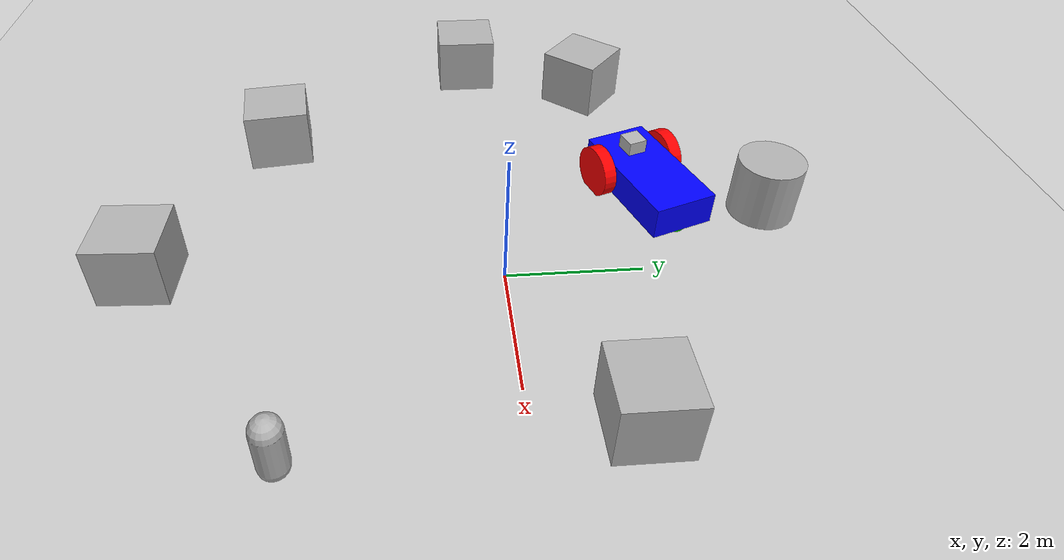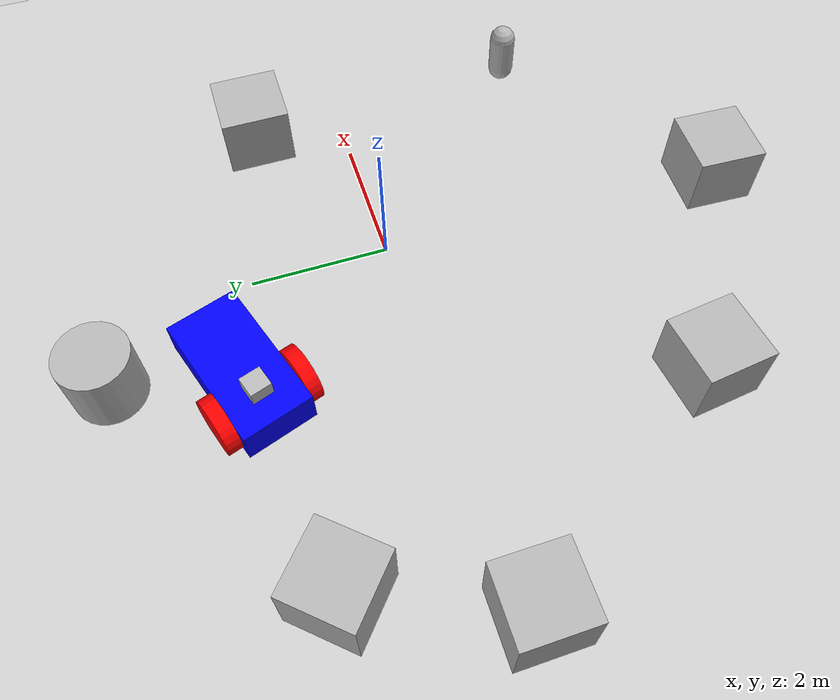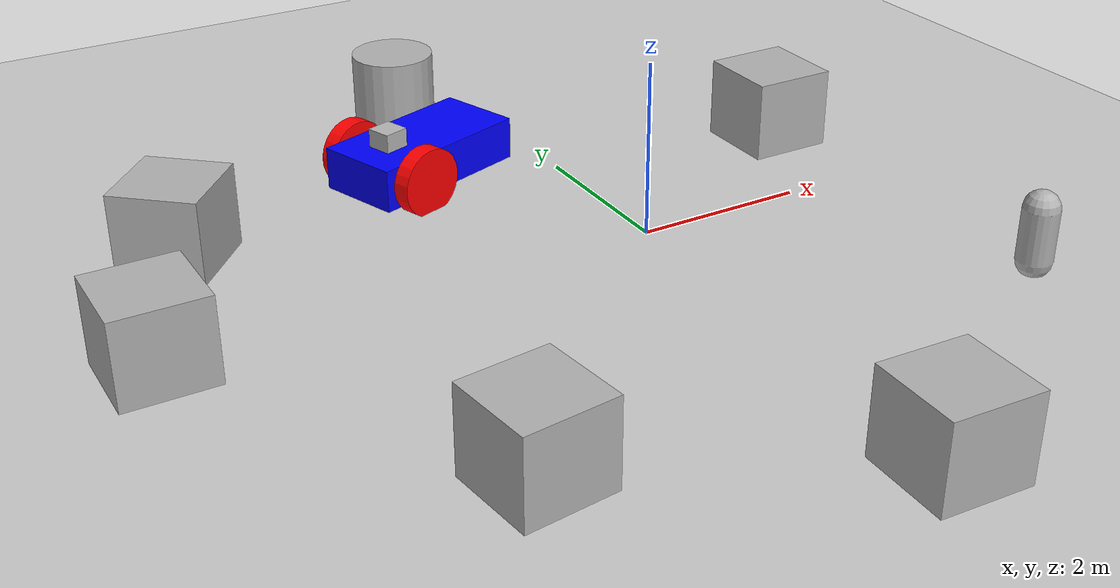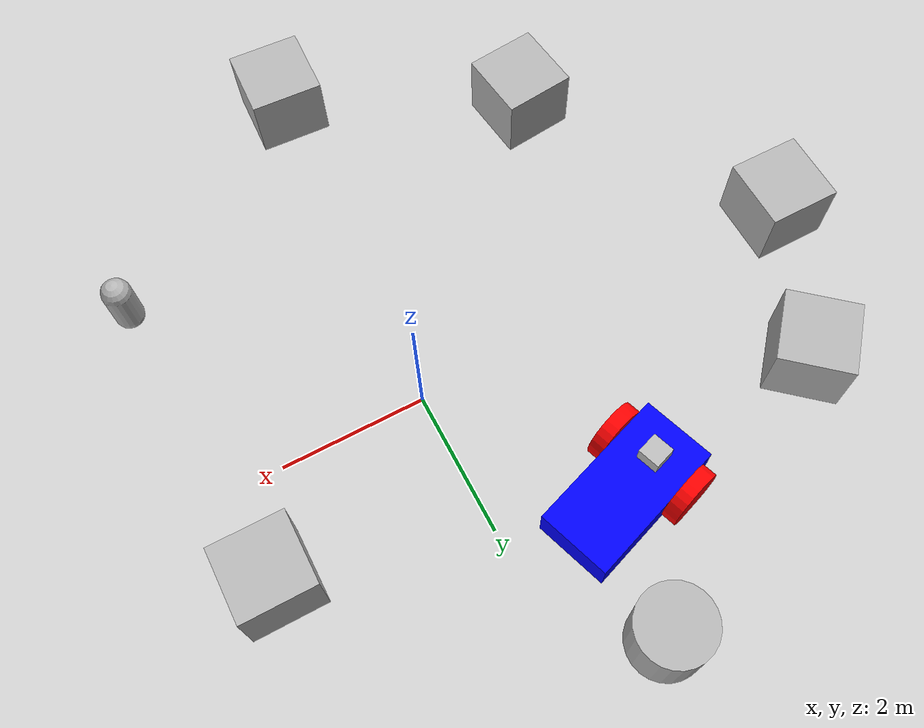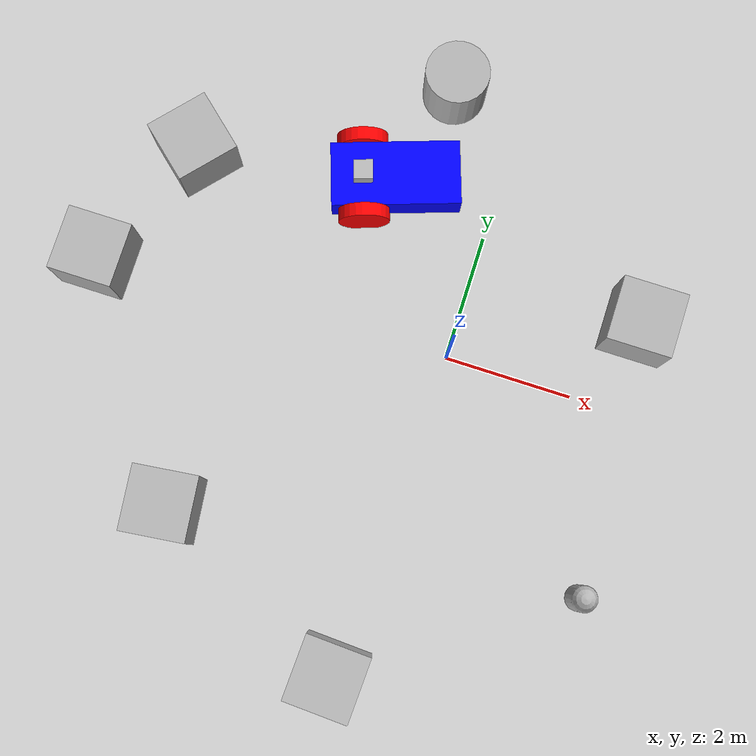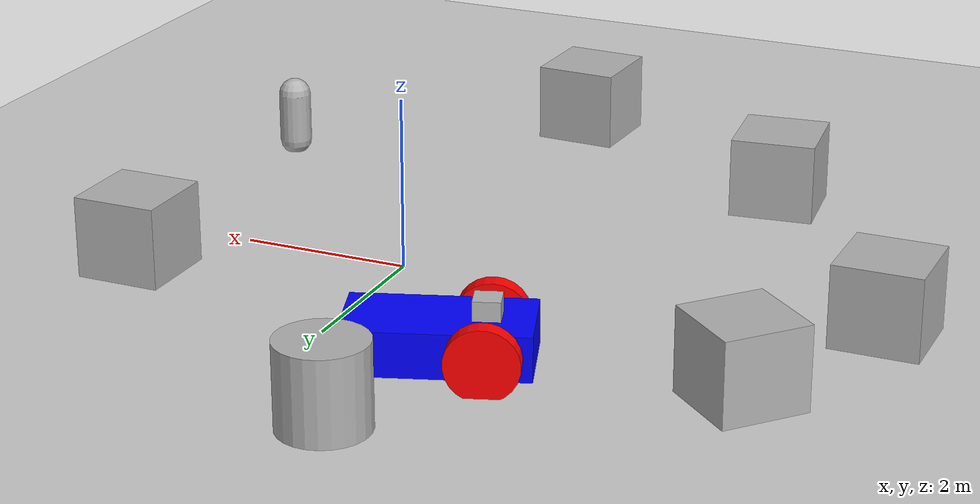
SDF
<sdf version='1.12'>
  <world name='empty'>
    <physics name='1ms' type='ignored'>
      <max_step_size>0.001</max_step_size>
      <real_time_factor>1</real_time_factor>
      <real_time_update_rate>1000</real_time_update_rate>
    </physics>
    <plugin name='gz::sim::systems::Physics' filename='gz-sim-physics-system'/>
    <plugin name='gz::sim::systems::SceneBroadcaster' filename='gz-sim-scene-broadcaster-system'/>
    <plugin name='gz::sim::systems::Contact' filename='gz-sim-contact-system'/>
    <plugin name='gz::sim::systems::Sensors' filename='gz-sim-sensors-system'>
      <render_engine>ogre2</render_engine>
    </plugin>
    <gravity>0 0 -9.8000000000000007</gravity>
    <magnetic_field>5.5644999999999998e-06 2.2875799999999999e-05 -4.2388400000000002e-05</magnetic_field>
    <atmosphere type='adiabatic'/>
    <scene>
      <ambient>0.400000006 0.400000006 0.400000006 1</ambient>
      <background>0.699999988 0.699999988 0.699999988 1</background>
      <shadows>true</shadows>
    </scene>
    <model name='ground_plane'>
      <static>true</static>
      <link name='link'>
        <collision name='collision'>
          <geometry>
            <plane>
              <normal>0 0 1</normal>
              <size>100 100</size>
            </plane>
          </geometry>
          <surface>
            <friction>
              <ode/>
            </friction>
            <bounce/>
            <contact/>
          </surface>
        </collision>
        <visual name='visual'>
          <geometry>
            <plane>
              <normal>0 0 1</normal>
              <size>100 100</size>
            </plane>
          </geometry>
          <material>
            <ambient>0.800000012 0.800000012 0.800000012 1</ambient>
            <diffuse>0.800000012 0.800000012 0.800000012 1</diffuse>
            <specular>0.800000012 0.800000012 0.800000012 1</specular>
          </material>
        </visual>
        <pose>0 0 0 0 0 0</pose>
        <inertial>
          <pose>0 0 0 0 0 0</pose>
          <mass>1</mass>
          <inertia>
            <ixx>1</ixx>
            <ixy>0</ixy>
            <ixz>0</ixz>
            <iyy>1</iyy>
            <iyz>0</iyz>
            <izz>1</izz>
          </inertia>
        </inertial>
        <enable_wind>false</enable_wind>
      </link>
      <pose>0 0 0 0 0 0</pose>
      <self_collide>false</self_collide>
    </model>
    <model name='rbot' canonical_link='chassis'>
      <pose>-2.0663899631976896 2.2545777786642738 4.0876373886278294e-06 4.1013828767486843e-06 3.1478962020290557e-06 0.32756224857638566</pose>
      <link name='chassis'>
        <pose>0.5 0 0.40000000000000002 0 0 0</pose>
        <inertial>
          <mass>1.14395</mass>
          <inertia>
            <ixx>0.095328999999999997</ixx>
            <ixy>0</ixy>
            <ixz>0</ixz>
            <iyy>0.38131700000000002</iyy>
            <iyz>0</iyz>
            <izz>0.47664600000000001</izz>
          </inertia>
          <pose>0 0 0 0 0 0</pose>
        </inertial>
        <visual name='visual'>
          <geometry>
            <box>
              <size>2 1 0.5</size>
            </box>
          </geometry>
          <material>
            <ambient>0 0 1 1</ambient>
            <diffuse>0 0 1 1</diffuse>
            <specular>0 0 1 1</specular>
          </material>
        </visual>
        <collision name='collision'>
          <geometry>
            <box>
              <size>2 1 0.5</size>
            </box>
          </geometry>
          <surface>
            <friction>
              <ode/>
            </friction>
            <bounce/>
            <contact/>
          </surface>
        </collision>
        <enable_wind>false</enable_wind>
      </link>
      <link name='lidar_link'>
        <pose>2.2204460492503131e-16 -8.8817841970012523e-16 0.71999999999999975 -9.5332177594212674e-22 -2.011509125350194e-21 -3.1411853071795859</pose>
        <inertial>
          <mass>0.10000000000000001</mass>
          <inertia>
            <ixx>0.00016666700000000001</ixx>
            <iyy>0.00016666700000000001</iyy>
            <izz>0.00016666700000000001</izz>
            <ixy>0</ixy>
            <ixz>0</ixz>
            <iyz>0</iyz>
          </inertia>
          <pose>0 0 0 0 0 0</pose>
        </inertial>
        <collision name='collision'>
          <geometry>
            <box>
              <size>0.29999999999999999 0.29999999999999999 0.29999999999999999</size>
            </box>
          </geometry>
          <surface>
            <friction>
              <ode/>
            </friction>
            <bounce/>
            <contact/>
          </surface>
        </collision>
        <visual name='visual'>
          <geometry>
            <box>
              <size>0.29999999999999999 0.29999999999999999 0.29999999999999999</size>
            </box>
          </geometry>
        </visual>
        <sensor name='gpu_lidar' type='gpu_lidar'>
          <pose>0 0 0 0 0 0</pose>
          <frame_id></frame_id>
          <topic>lidar2</topic>
          <update_rate>10</update_rate>
          <enable_metrics>false</enable_metrics>
          <lidar>
            <scan>
              <horizontal>
                <samples>640</samples>
                <resolution>1</resolution>
                <min_angle>-1.396263</min_angle>
                <max_angle>1.396263</max_angle>
              </horizontal>
              <vertical>
                <samples>1</samples>
                <min_angle>0</min_angle>
                <max_angle>0</max_angle>
                <resolution>1</resolution>
              </vertical>
            </scan>
            <range>
              <min>0.080000000000000002</min>
              <max>10</max>
              <resolution>0.01</resolution>
            </range>
            <noise>
              <type>none</type>
              <mean>0</mean>
              <stddev>0</stddev>
            </noise>
            <visibility_mask>4294967295</visibility_mask>
          </lidar>
        </sensor>
        <enable_wind>false</enable_wind>
      </link>
      <link name='left_wheel'>
        <pose>2.2204460492503131e-16 0.59999999999999964 0.4000000000000003 -1.5706999999999989 0.87086726181460783 6.0322899376808289e-16</pose>
        <inertial>
          <mass>1</mass>
          <inertia>
            <ixx>0.043333000000000003</ixx>
            <ixy>0</ixy>
            <ixz>0</ixz>
            <iyy>0.043333000000000003</iyy>
            <iyz>0</iyz>
            <izz>0.080000000000000002</izz>
          </inertia>
          <pose>0 0 0 0 0 0</pose>
        </inertial>
        <visual name='visual'>
          <geometry>
            <cylinder>
              <radius>0.40000000000000002</radius>
              <length>0.20000000000000001</length>
            </cylinder>
          </geometry>
          <material>
            <ambient>1 0 0 1</ambient>
            <diffuse>1 0 0 1</diffuse>
            <specular>1 0 0 1</specular>
          </material>
        </visual>
        <collision name='collision'>
          <geometry>
            <cylinder>
              <radius>0.40000000000000002</radius>
              <length>0.20000000000000001</length>
            </cylinder>
          </geometry>
          <surface>
            <friction>
              <ode/>
            </friction>
            <bounce/>
            <contact/>
          </surface>
        </collision>
        <enable_wind>false</enable_wind>
      </link>
      <link name='right_wheel'>
        <pose>4.4408920985006262e-16 -0.59999999999999964 0.39999999999999997 1.5708926535897929 1.3624259640415446 3.1415926535897927</pose>
        <inertial>
          <mass>1</mass>
          <inertia>
            <ixx>0.043333000000000003</ixx>
            <ixy>0</ixy>
            <ixz>0</ixz>
            <iyy>0.043333000000000003</iyy>
            <iyz>0</iyz>
            <izz>0.080000000000000002</izz>
          </inertia>
          <pose>0 0 0 0 0 0</pose>
        </inertial>
        <visual name='visual'>
          <geometry>
            <cylinder>
              <radius>0.40000000000000002</radius>
              <length>0.20000000000000001</length>
            </cylinder>
          </geometry>
          <material>
            <ambient>1 0 0 1</ambient>
            <diffuse>1 0 0 1</diffuse>
            <specular>1 0 0 1</specular>
          </material>
        </visual>
        <collision name='collision'>
          <geometry>
            <cylinder>
              <radius>0.40000000000000002</radius>
              <length>0.20000000000000001</length>
            </cylinder>
          </geometry>
          <surface>
            <friction>
              <ode/>
            </friction>
            <bounce/>
            <contact/>
          </surface>
        </collision>
        <enable_wind>false</enable_wind>
      </link>
      <frame name='caster_frame' attached_to='chassis'>
        <pose>0.80000000000000004 0 -0.20000000000000001 0 0 0</pose>
      </frame>
      <link name='caster'>
        <pose>1.3000000000000007 0 0.20000000000000026 0.3699138703859205 -0.24896958309803285 0.43402361158298508</pose>
        <inertial>
          <mass>1</mass>
          <inertia>
            <ixx>0.016</ixx>
            <ixy>0</ixy>
            <ixz>0</ixz>
            <iyy>0.016</iyy>
            <iyz>0</iyz>
            <izz>0.016</izz>
          </inertia>
          <pose>0 0 0 0 0 0</pose>
        </inertial>
        <visual name='visual'>
          <geometry>
            <sphere>
              <radius>0.20000000000000001</radius>
            </sphere>
          </geometry>
          <material>
            <ambient>0 1 0 1</ambient>
            <diffuse>0 1 0 1</diffuse>
            <specular>0 1 0 1</specular>
          </material>
        </visual>
        <collision name='collision'>
          <geometry>
            <sphere>
              <radius>0.20000000000000001</radius>
            </sphere>
          </geometry>
          <surface>
            <friction>
              <ode/>
            </friction>
            <bounce/>
            <contact/>
          </surface>
        </collision>
        <enable_wind>false</enable_wind>
      </link>
      <joint name='lidar_sensor_joint' type='fixed'>
        <parent>chassis</parent>
        <child>lidar_link</child>
        <pose>0 0 0 0 0 0</pose>
      </joint>
      <joint name='left_wheel_joint' type='revolute'>
        <pose>1.7347234759768071e-18 1.1102230246251565e-16 0 0 0 0</pose>
        <parent>chassis</parent>
        <child>left_wheel</child>
        <axis>
          <xyz>0 9.6326794747692026e-05 0.99999999536057438</xyz>
          <limit>
            <lower>-1.7976900000000001e+308</lower>
            <upper>1.7976900000000001e+308</upper>
            <effort>inf</effort>
            <velocity>inf</velocity>
            <stiffness>100000000</stiffness>
            <dissipation>1</dissipation>
          </limit>
          <dynamics>
            <spring_reference>0</spring_reference>
            <spring_stiffness>0</spring_stiffness>
            <damping>0</damping>
            <friction>0</friction>
          </dynamics>
        </axis>
      </joint>
      <joint name='right_wheel_joint' type='revolute'>
        <pose>5.5511151231257827e-17 2.7755575615628914e-16 0 0 0 0</pose>
        <parent>chassis</parent>
        <child>right_wheel</child>
        <axis>
          <xyz>0 9.6326794747692026e-05 0.99999999536057438</xyz>
          <limit>
            <lower>-1.7976900000000001e+308</lower>
            <upper>1.7976900000000001e+308</upper>
            <effort>inf</effort>
            <velocity>inf</velocity>
            <stiffness>100000000</stiffness>
            <dissipation>1</dissipation>
          </limit>
          <dynamics>
            <spring_reference>0</spring_reference>
            <spring_stiffness>0</spring_stiffness>
            <damping>0</damping>
            <friction>0</friction>
          </dynamics>
        </axis>
      </joint>
      <joint name='caster_wheel' type='ball'>
        <parent>chassis</parent>
        <child>caster</child>
        <pose>-2.7755575615628914e-16 0 0 0 0 0</pose>
      </joint>
      <plugin name='gz::sim::systems::DiffDrive' filename='gz-sim-diff-drive-system'>
        <left_joint>left_wheel_joint</left_joint>
        <right_joint>right_wheel_joint</right_joint>
        <wheel_separation>1.25</wheel_separation>
        <wheel_radius>0.3</wheel_radius>
        <odom_publish_frequency>1</odom_publish_frequency>
      </plugin>
      <static>false</static>
      <self_collide>false</self_collide>
    </model>
    <model name='box'>
      <pose>-5.5916552543640137 -0.16865600645542145 0.49999999991865868 1.9973360145016719e-21 2.6576393473189134e-22 2.2210091275439224e-23</pose>
      <link name='box_link'>
        <inertial>
          <inertia>
            <ixx>0.16666</ixx>
            <ixy>0</ixy>
            <ixz>0</ixz>
            <iyy>0.16666</iyy>
            <iyz>0</iyz>
            <izz>0.16666</izz>
          </inertia>
          <mass>1</mass>
          <pose>0 0 0 0 0 0</pose>
        </inertial>
        <collision name='box_collision'>
          <geometry>
            <box>
              <size>1 1 1</size>
            </box>
          </geometry>
          <surface>
            <friction>
              <ode/>
            </friction>
            <bounce/>
            <contact/>
          </surface>
        </collision>
        <visual name='box_visual'>
          <geometry>
            <box>
              <size>1 1 1</size>
            </box>
          </geometry>
          <material>
            <ambient>0.300000012 0.300000012 0.300000012 1</ambient>
            <diffuse>0.699999988 0.699999988 0.699999988 1</diffuse>
            <specular>1 1 1 1</specular>
          </material>
        </visual>
        <pose>0 0 0 0 0 0</pose>
        <enable_wind>false</enable_wind>
      </link>
      <static>false</static>
      <self_collide>false</self_collide>
    </model>
    <model name='capsule'>
      <pose>2.9485800000000002 -2.89879 0.49999999995100025 0 0 0</pose>
      <link name='capsule_link'>
        <inertial>
          <inertia>
            <ixx>0.074153999999999998</ixx>
            <ixy>0</ixy>
            <ixz>0</ixz>
            <iyy>0.074153999999999998</iyy>
            <iyz>0</iyz>
            <izz>0.018769000000000001</izz>
          </inertia>
          <mass>1</mass>
          <pose>0 0 0 0 0 0</pose>
        </inertial>
        <collision name='capsule_collision'>
          <geometry>
            <capsule>
              <radius>0.20000000000000001</radius>
              <length>0.59999999999999998</length>
            </capsule>
          </geometry>
          <surface>
            <friction>
              <ode/>
            </friction>
            <bounce/>
            <contact/>
          </surface>
        </collision>
        <visual name='capsule_visual'>
          <geometry>
            <capsule>
              <radius>0.20000000000000001</radius>
              <length>0.59999999999999998</length>
            </capsule>
          </geometry>
          <material>
            <ambient>0.300000012 0.300000012 0.300000012 1</ambient>
            <diffuse>0.699999988 0.699999988 0.699999988 1</diffuse>
            <specular>1 1 1 1</specular>
          </material>
        </visual>
        <pose>0 0 0 0 0 0</pose>
        <enable_wind>false</enable_wind>
      </link>
      <static>false</static>
      <self_collide>false</self_collide>
    </model>
    <model name='box_0'>
      <pose>-0.25312413395411876 -5.093073914735978 0.49999934217924757 3.5391266692681155e-07 9.1436426448292562e-07 1.5250055920993988</pose>
      <link name='box_link'>
        <inertial>
          <inertia>
            <ixx>0.16666</ixx>
            <ixy>0</ixy>
            <ixz>0</ixz>
            <iyy>0.16666</iyy>
            <iyz>0</iyz>
            <izz>0.16666</izz>
          </inertia>
          <mass>1</mass>
          <pose>0 0 0 0 0 0</pose>
        </inertial>
        <collision name='box_collision'>
          <geometry>
            <box>
              <size>1 1 1</size>
            </box>
          </geometry>
          <surface>
            <friction>
              <ode/>
            </friction>
            <bounce/>
            <contact/>
          </surface>
        </collision>
        <visual name='box_visual'>
          <geometry>
            <box>
              <size>1 1 1</size>
            </box>
          </geometry>
          <material>
            <ambient>0.300000012 0.300000012 0.300000012 1</ambient>
            <diffuse>0.699999988 0.699999988 0.699999988 1</diffuse>
            <specular>1 1 1 1</specular>
          </material>
        </visual>
        <pose>0 0 0 0 0 0</pose>
        <enable_wind>false</enable_wind>
      </link>
      <static>false</static>
      <self_collide>false</self_collide>
    </model>
    <model name='box_0_1'>
      <pose>-3.3463164890774411 -3.4726703863988386 0.49999955455738831 -3.3001734934684963e-08 2.0427256952425455e-10 0.11428764449116648</pose>
      <link name='box_link'>
        <inertial>
          <inertia>
            <ixx>0.16666</ixx>
            <ixy>0</ixy>
            <ixz>0</ixz>
            <iyy>0.16666</iyy>
            <iyz>0</iyz>
            <izz>0.16666</izz>
          </inertia>
          <mass>1</mass>
          <pose>0 0 0 0 0 0</pose>
        </inertial>
        <collision name='box_collision'>
          <geometry>
            <box>
              <size>1 1 1</size>
            </box>
          </geometry>
          <surface>
            <friction>
              <ode/>
            </friction>
            <bounce/>
            <contact/>
          </surface>
        </collision>
        <visual name='box_visual'>
          <geometry>
            <box>
              <size>1 1 1</size>
            </box>
          </geometry>
          <material>
            <ambient>0.300000012 0.300000012 0.300000012 1</ambient>
            <diffuse>0.699999988 0.699999988 0.699999988 1</diffuse>
            <specular>1 1 1 1</specular>
          </material>
        </visual>
        <pose>0 0 0 0 0 0</pose>
        <enable_wind>false</enable_wind>
      </link>
      <static>false</static>
      <self_collide>false</self_collide>
    </model>
    <model name='ground_plane_1'>
      <static>true</static>
      <link name='link'>
        <collision name='collision'>
          <geometry>
            <plane>
              <normal>0 0 1</normal>
              <size>100 100</size>
            </plane>
          </geometry>
          <surface>
            <friction>
              <ode/>
            </friction>
            <bounce/>
            <contact/>
          </surface>
        </collision>
        <visual name='visual'>
          <geometry>
            <plane>
              <normal>0 0 1</normal>
              <size>100 100</size>
            </plane>
          </geometry>
          <material>
            <ambient>0.800000012 0.800000012 0.800000012 1</ambient>
            <diffuse>0.800000012 0.800000012 0.800000012 1</diffuse>
            <specular>0.800000012 0.800000012 0.800000012 1</specular>
          </material>
        </visual>
        <pose>0 0 0 0 0 0</pose>
        <inertial>
          <pose>0 0 0 0 0 0</pose>
          <mass>1</mass>
          <inertia>
            <ixx>1</ixx>
            <ixy>0</ixy>
            <ixz>0</ixz>
            <iyy>1</iyy>
            <iyz>0</iyz>
            <izz>1</izz>
          </inertia>
        </inertial>
        <enable_wind>false</enable_wind>
      </link>
      <pose>1.05586 -4.1446100000000001 0 0 0 0</pose>
      <self_collide>false</self_collide>
    </model>
    <model name='box_0_2'>
      <pose>-4.68900904537852 1.9216470482632351 0.49999950526093739 2.3294689815296981e-07 -3.1378279583149537e-07 0.84903557029180521</pose>
      <link name='box_link'>
        <inertial>
          <inertia>
            <ixx>0.16666</ixx>
            <ixy>0</ixy>
            <ixz>0</ixz>
            <iyy>0.16666</iyy>
            <iyz>0</iyz>
            <izz>0.16666</izz>
          </inertia>
          <mass>1</mass>
          <pose>0 0 0 0 0 0</pose>
        </inertial>
        <collision name='box_collision'>
          <geometry>
            <box>
              <size>1 1 1</size>
            </box>
          </geometry>
          <surface>
            <friction>
              <ode/>
            </friction>
            <bounce/>
            <contact/>
          </surface>
        </collision>
        <visual name='box_visual'>
          <geometry>
            <box>
              <size>1 1 1</size>
            </box>
          </geometry>
          <material>
            <ambient>0.300000012 0.300000012 0.300000012 1</ambient>
            <diffuse>0.699999988 0.699999988 0.699999988 1</diffuse>
            <specular>1 1 1 1</specular>
          </material>
        </visual>
        <pose>0 0 0 0 0 0</pose>
        <enable_wind>false</enable_wind>
      </link>
      <static>false</static>
      <self_collide>false</self_collide>
    </model>
    <model name='box_0_2_1'>
      <pose>2.6613099999999998 1.34623 0.49999999995099875 -5.3766204913949038e-22 9.3620637225482676e-22 1.8634424196808295e-22</pose>
      <link name='box_link'>
        <inertial>
          <inertia>
            <ixx>0.16666</ixx>
            <ixy>0</ixy>
            <ixz>0</ixz>
            <iyy>0.16666</iyy>
            <iyz>0</iyz>
            <izz>0.16666</izz>
          </inertia>
          <mass>1</mass>
          <pose>0 0 0 0 0 0</pose>
        </inertial>
        <collision name='box_collision'>
          <geometry>
            <box>
              <size>1 1 1</size>
            </box>
          </geometry>
          <surface>
            <friction>
              <ode/>
            </friction>
            <bounce/>
            <contact/>
          </surface>
        </collision>
        <visual name='box_visual'>
          <geometry>
            <box>
              <size>1 1 1</size>
            </box>
          </geometry>
          <material>
            <ambient>0.300000012 0.300000012 0.300000012 1</ambient>
            <diffuse>0.699999988 0.699999988 0.699999988 1</diffuse>
            <specular>1 1 1 1</specular>
          </material>
        </visual>
        <pose>0 0 0 0 0 0</pose>
        <enable_wind>false</enable_wind>
      </link>
      <static>false</static>
      <self_collide>false</self_collide>
    </model>
    <model name='cylinder'>
      <pose>-1.1454175226567476 4.1239940717810395 0.49999999882734925 -2.3304368570349084e-09 9.6438512263592827e-10 -0.14370101454611803</pose>
      <link name='cylinder_link'>
        <inertial>
          <inertia>
            <ixx>0.14580000000000001</ixx>
            <ixy>0</ixy>
            <ixz>0</ixz>
            <iyy>0.14580000000000001</iyy>
            <iyz>0</iyz>
            <izz>0.125</izz>
          </inertia>
          <mass>1</mass>
          <pose>0 0 0 0 0 0</pose>
        </inertial>
        <collision name='cylinder_collision'>
          <geometry>
            <cylinder>
              <radius>0.5</radius>
              <length>1</length>
            </cylinder>
          </geometry>
          <surface>
            <friction>
              <ode/>
            </friction>
            <bounce/>
            <contact/>
          </surface>
        </collision>
        <visual name='cylinder_visual'>
          <geometry>
            <cylinder>
              <radius>0.5</radius>
              <length>1</length>
            </cylinder>
          </geometry>
          <material>
            <ambient>0.300000012 0.300000012 0.300000012 1</ambient>
            <diffuse>0.699999988 0.699999988 0.699999988 1</diffuse>
            <specular>1 1 1 1</specular>
          </material>
        </visual>
        <pose>0 0 0 0 0 0</pose>
        <enable_wind>false</enable_wind>
      </link>
      <static>false</static>
      <self_collide>false</self_collide>
    </model>
    <light name='sun' type='directional'>
      <pose>0 0 10 0 0 0</pose>
      <cast_shadows>true</cast_shadows>
      <intensity>1</intensity>
      <direction>-0.5 0.10000000000000001 -0.90000000000000002</direction>
      <diffuse>0.800000012 0.800000012 0.800000012 1</diffuse>
      <specular>0.200000003 0.200000003 0.200000003 1</specular>
      <attenuation>
        <range>1000</range>
        <linear>0.0099999997764825821</linear>
        <constant>0.89999997615814209</constant>
        <quadratic>0.0010000000474974513</quadratic>
      </attenuation>
      <spot>
        <inner_angle>0</inner_angle>
        <outer_angle>0</outer_angle>
        <falloff>0</falloff>
      </spot>
    </light>
  </world>
</sdf>
